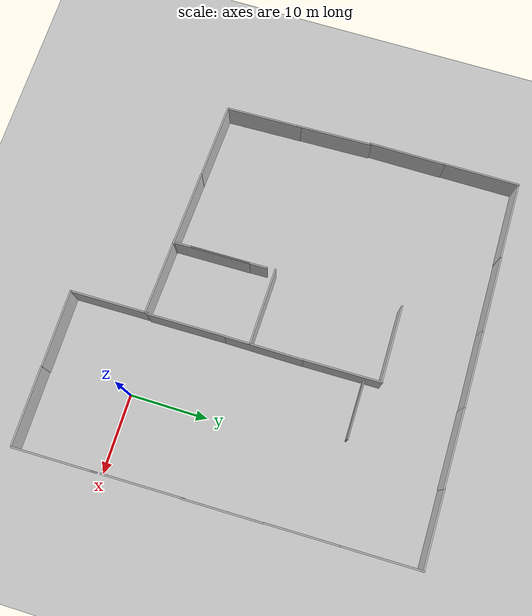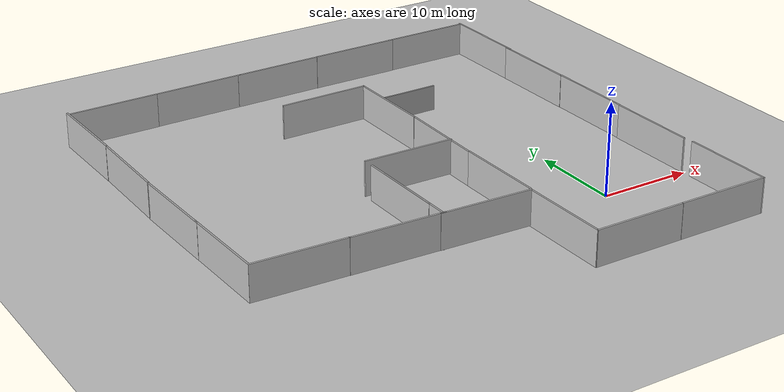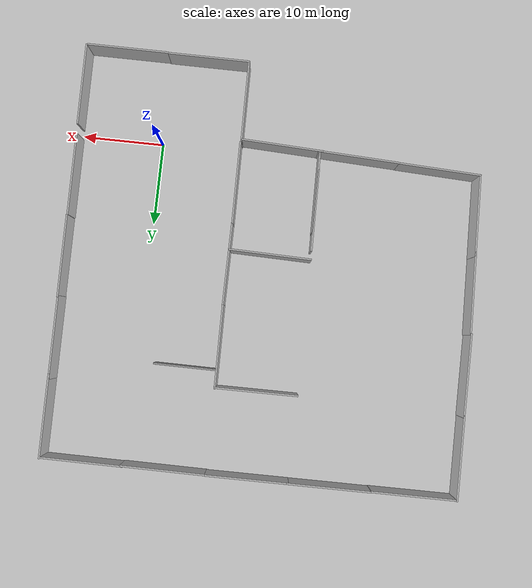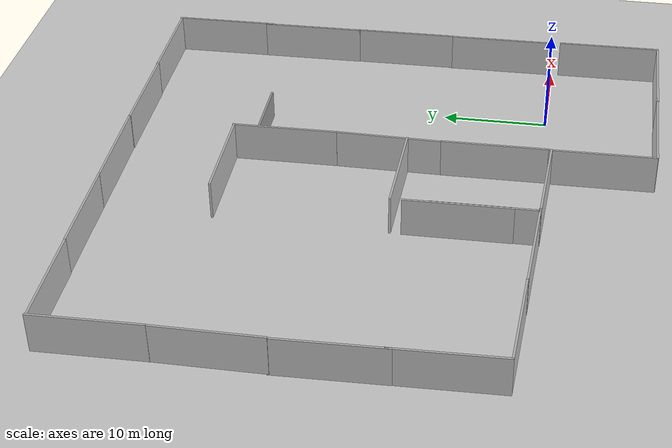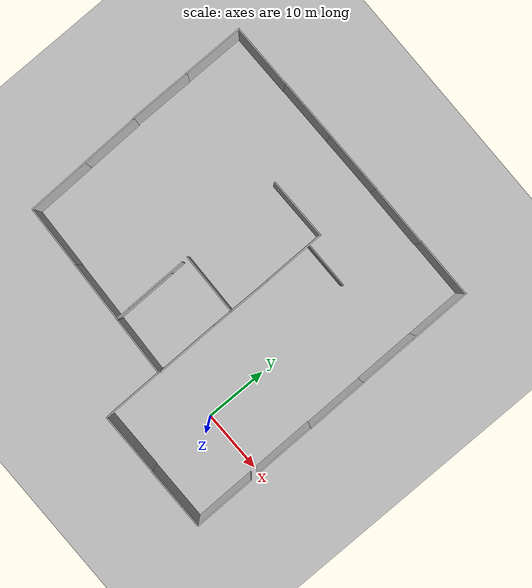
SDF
<sdf version="1.7">
 <world name="default">
  <light name="sun" type="directional">
   <pose>0 0 10 0 -0 0</pose>
   <diffuse>0.8 0.8 0.8 1</diffuse>
   <specular>0.2 0.2 0.2 1</specular>
   <attenuation>
    <range>1000</range>
    <constant>0.9</constant>
    <linear>0.01</linear>
    <quadratic>0.001</quadratic>
   </attenuation>
   <direction>-0.5 0.1 -0.9</direction>
   <spot><inner_angle>0</inner_angle><outer_angle>0</outer_angle><falloff>0</falloff></spot>
  </light>
  <model name="ground_plane">
   <static>1</static>
   <link name="link">
    <collision name="collision">
     <geometry><plane><normal>0 0 1</normal><size>100 100</size></plane></geometry>
     <surface>
      <contact><collide_bitmask>65535</collide_bitmask></contact>
      <friction><ode><mu>100</mu><mu2>50</mu2></ode></friction>
     </surface>
    </collision>
    <visual name="visual">
     <cast_shadows>0</cast_shadows>
     <geometry><plane><normal>0 0 1</normal><size>100 100</size></plane></geometry>
     <material>
      <script><uri>file://media/materials/scripts/gazebo.material</uri><name>Gazebo/Grey</name></script>
     </material>
    </visual>
   </link>
  </model>
  <gravity>0 0 -9.8</gravity>
  <magnetic_field>6e-06 2.3e-05 -4.2e-05</magnetic_field>
  <atmosphere type="adiabatic"/>
  <physics type="ode">
   <max_step_size>0.001</max_step_size>
   <real_time_factor>1</real_time_factor>
   <real_time_update_rate>1000</real_time_update_rate>
  </physics>
  <scene><ambient>0.4 0.4 0.4 1</ambient><background>0.7 0.7 0.7 1</background><shadows>1</shadows></scene>
  <audio><device>default</device></audio>
  <spherical_coordinates>
   <surface_model>EARTH_WGS84</surface_model>
   <latitude_deg>0</latitude_deg>
   <longitude_deg>0</longitude_deg>
   <elevation>0</elevation>
   <heading_deg>0</heading_deg>
  </spherical_coordinates>
  <model name="cutout_wall">
   <static>1</static>
   <link name="link">
    <pose>0 0 1.4 0 -0 0</pose>
    <collision name="collision">
     <geometry><box><size>10 0.2 3.8</size></box></geometry>
     <surface>
      <contact>
       <collide_without_contact>1</collide_without_contact>
       <collide_without_contact_bitmask>2</collide_without_contact_bitmask>
      </contact>
     </surface>
    </collision>
    <visual name="visual">
     <cast_shadows>0</cast_shadows>
     <geometry><box><size>10 0.2 3.8</size></box></geometry>
     <material>
      <script>
       <uri>/home/yy/factory_ws/src/models/cutout_wall/materials/scripts</uri>
       <uri>/home/yy/factory_ws/src/models/cutout_wall/materials/textures</uri>
       <name>drc_practice/cutout_wall</name>
      </script>
     </material>
    </visual>
    <sensor name="mud_contact" type="contact">
     <always_on>1</always_on>
     <update_rate>1000</update_rate>
     <contact><collision>collision</collision><topic>__default_topic__</topic></contact>
    </sensor>
   </link>
   <plugin name="gazebo_mud" filename="libMudPlugin.so">
    <contact_sensor_name>link/mud_contact</contact_sensor_name>
    <stiffness>0.0</stiffness>
    <damping>40.0</damping>
    <contact_surface_bitmask>2</contact_surface_bitmask>
    <link_name>drill::link</link_name>
   </plugin>
   <pose>5.14559 -10.6858 0.4676 0 -0 0</pose>
  </model>
  <model name="cutout_wall_0">
   <static>1</static>
   <link name="link">
    <pose>0 0 1.4 0 -0 0</pose>
    <collision name="collision">
     <geometry><box><size>10 0.2 3.8</size></box></geometry>
     <surface>
      <contact>
       <collide_without_contact>1</collide_without_contact>
       <collide_without_contact_bitmask>2</collide_without_contact_bitmask>
      </contact>
     </surface>
    </collision>
    <visual name="visual">
     <cast_shadows>0</cast_shadows>
     <geometry><box><size>10 0.2 3.8</size></box></geometry>
     <material>
      <script>
       <uri>/home/yy/factory_ws/src/models/cutout_wall/materials/scripts</uri>
       <uri>/home/yy/factory_ws/src/models/cutout_wall/materials/textures</uri>
       <name>drc_practice/cutout_wall</name>
      </script>
     </material>
    </visual>
    <sensor name="mud_contact" type="contact">
     <always_on>1</always_on>
     <update_rate>1000</update_rate>
     <contact><collision>collision</collision><topic>__default_topic__</topic></contact>
    </sensor>
   </link>
   <plugin name="gazebo_mud" filename="libMudPlugin.so">
    <contact_sensor_name>link/mud_contact</contact_sensor_name>
    <stiffness>0.0</stiffness>
    <damping>40.0</damping>
    <contact_surface_bitmask>2</contact_surface_bitmask>
    <link_name>drill::link</link_name>
   </plugin>
   <pose>-4.79404 -10.6418 0.43645 0 -0 0</pose>
  </model>
  <model name="cutout_wall_1">
   <static>1</static>
   <link name="link">
    <pose>0 0 1.4 0 -0 0</pose>
    <collision name="collision">
     <geometry><box><size>10 0.2 3.8</size></box></geometry>
     <surface>
      <contact>
       <collide_without_contact>1</collide_without_contact>
       <collide_without_contact_bitmask>2</collide_without_contact_bitmask>
      </contact>
     </surface>
    </collision>
    <visual name="visual">
     <cast_shadows>0</cast_shadows>
     <geometry><box><size>10 0.2 3.8</size></box></geometry>
     <material>
      <script>
       <uri>/home/yy/factory_ws/src/models/cutout_wall/materials/scripts</uri>
       <uri>/home/yy/factory_ws/src/models/cutout_wall/materials/textures</uri>
       <name>drc_practice/cutout_wall</name>
      </script>
     </material>
    </visual>
    <sensor name="mud_contact" type="contact">
     <always_on>1</always_on>
     <update_rate>1000</update_rate>
     <contact><collision>collision</collision><topic>__default_topic__</topic></contact>
    </sensor>
   </link>
   <plugin name="gazebo_mud" filename="libMudPlugin.so">
    <contact_sensor_name>link/mud_contact</contact_sensor_name>
    <stiffness>0.0</stiffness>
    <damping>40.0</damping>
    <contact_surface_bitmask>2</contact_surface_bitmask>
    <link_name>drill::link</link_name>
   </plugin>
   <pose>-9.82559 4.32011 0.41716 0 0 -1.56067</pose>
  </model>
  <model name="cutout_wall_1_clone">
   <static>1</static>
   <link name="link">
    <pose>0 0 1.4 0 -0 0</pose>
    <collision name="collision">
     <geometry><box><size>10 0.2 3.8</size></box></geometry>
     <surface>
      <contact>
       <collide_without_contact>1</collide_without_contact>
       <collide_without_contact_bitmask>2</collide_without_contact_bitmask>
      </contact>
     </surface>
    </collision>
    <visual name="visual">
     <cast_shadows>0</cast_shadows>
     <geometry><box><size>10 0.2 3.8</size></box></geometry>
     <material>
      <script>
       <uri>/home/yy/factory_ws/src/models/cutout_wall/materials/scripts</uri>
       <uri>/home/yy/factory_ws/src/models/cutout_wall/materials/textures</uri>
       <name>drc_practice/cutout_wall</name>
      </script>
     </material>
    </visual>
    <sensor name="mud_contact" type="contact">
     <always_on>1</always_on>
     <update_rate>1000</update_rate>
     <contact><collision>collision</collision><topic>__default_topic__</topic></contact>
    </sensor>
   </link>
   <plugin name="gazebo_mud" filename="libMudPlugin.so">
    <contact_sensor_name>link/mud_contact</contact_sensor_name>
    <stiffness>0.0</stiffness>
    <damping>40.0</damping>
    <contact_surface_bitmask>2</contact_surface_bitmask>
    <link_name>drill::link</link_name>
   </plugin>
   <pose>-9.81295 -5.68313 0.43259 0 0 -1.55905</pose>
  </model>
  <model name="cutout_wall_1_clone_0">
   <static>1</static>
   <link name="link">
    <pose>0 0 1.4 0 -0 0</pose>
    <collision name="collision">
     <geometry><box><size>10 0.2 3.8</size></box></geometry>
     <surface>
      <contact>
       <collide_without_contact>1</collide_without_contact>
       <collide_without_contact_bitmask>2</collide_without_contact_bitmask>
      </contact>
     </surface>
    </collision>
    <visual name="visual">
     <cast_shadows>0</cast_shadows>
     <geometry><box><size>10 0.2 3.8</size></box></geometry>
     <material>
      <script>
       <uri>/home/yy/factory_ws/src/models/cutout_wall/materials/scripts</uri>
       <uri>/home/yy/factory_ws/src/models/cutout_wall/materials/textures</uri>
       <name>drc_practice/cutout_wall</name>
      </script>
     </material>
    </visual>
    <sensor name="mud_contact" type="contact">
     <always_on>1</always_on>
     <update_rate>1000</update_rate>
     <contact><collision>collision</collision><topic>__default_topic__</topic></contact>
    </sensor>
   </link>
   <plugin name="gazebo_mud" filename="libMudPlugin.so">
    <contact_sensor_name>link/mud_contact</contact_sensor_name>
    <stiffness>0.0</stiffness>
    <damping>40.0</damping>
    <contact_surface_bitmask>2</contact_surface_bitmask>
    <link_name>drill::link</link_name>
   </plugin>
   <pose>-9.84536 14.3074 0.400004 0 0.007889 -1.57425</pose>
  </model>
  <model name="cutout_wall_1_clone_clone">
   <static>1</static>
   <link name="link">
    <pose>0 0 1.4 0 -0 0</pose>
    <collision name="collision">
     <geometry><box><size>10 0.2 3.8</size></box></geometry>
     <surface>
      <contact>
       <collide_without_contact>1</collide_without_contact>
       <collide_without_contact_bitmask>2</collide_without_contact_bitmask>
      </contact>
     </surface>
    </collision>
    <visual name="visual">
     <cast_shadows>0</cast_shadows>
     <geometry><box><size>10 0.2 3.8</size></box></geometry>
     <material>
      <script>
       <uri>/home/yy/factory_ws/src/models/cutout_wall/materials/scripts</uri>
       <uri>/home/yy/factory_ws/src/models/cutout_wall/materials/textures</uri>
       <name>drc_practice/cutout_wall</name>
      </script>
     </material>
    </visual>
    <sensor name="mud_contact" type="contact">
     <always_on>1</always_on>
     <update_rate>1000</update_rate>
     <contact><collision>collision</collision><topic>__default_topic__</topic></contact>
    </sensor>
   </link>
   <plugin name="gazebo_mud" filename="libMudPlugin.so">
    <contact_sensor_name>link/mud_contact</contact_sensor_name>
    <stiffness>0.0</stiffness>
    <damping>40.0</damping>
    <contact_surface_bitmask>2</contact_surface_bitmask>
    <link_name>drill::link</link_name>
   </plugin>
   <pose>-9.90847 24.1982 0.45219 0 0 -1.55905</pose>
  </model>
  <model name="cutout_wall_0_clone">
   <static>1</static>
   <link name="link">
    <pose>0 0 1.4 0 -0 0</pose>
    <collision name="collision">
     <geometry><box><size>10 0.2 3.8</size></box></geometry>
     <surface>
      <contact>
       <collide_without_contact>1</collide_without_contact>
       <collide_without_contact_bitmask>2</collide_without_contact_bitmask>
      </contact>
     </surface>
    </collision>
    <visual name="visual">
     <cast_shadows>0</cast_shadows>
     <geometry><box><size>10 0.2 3.8</size></box></geometry>
     <material>
      <script>
       <uri>/home/yy/factory_ws/src/models/cutout_wall/materials/scripts</uri>
       <uri>/home/yy/factory_ws/src/models/cutout_wall/materials/textures</uri>
       <name>drc_practice/cutout_wall</name>
      </script>
     </material>
    </visual>
    <sensor name="mud_contact" type="contact">
     <always_on>1</always_on>
     <update_rate>1000</update_rate>
     <contact><collision>collision</collision><topic>__default_topic__</topic></contact>
    </sensor>
   </link>
   <plugin name="gazebo_mud" filename="libMudPlugin.so">
    <contact_sensor_name>link/mud_contact</contact_sensor_name>
    <stiffness>0.0</stiffness>
    <damping>40.0</damping>
    <contact_surface_bitmask>2</contact_surface_bitmask>
    <link_name>drill::link</link_name>
   </plugin>
   <pose>-4.89379 39.2865 0.38508 0 -0 0</pose>
  </model>
  <model name="cutout_wall_0_clone_0">
   <static>1</static>
   <link name="link">
    <pose>0 0 1.4 0 -0 0</pose>
    <collision name="collision">
     <geometry><box><size>10 0.2 3.8</size></box></geometry>
     <surface>
      <contact>
       <collide_without_contact>1</collide_without_contact>
       <collide_without_contact_bitmask>2</collide_without_contact_bitmask>
      </contact>
     </surface>
    </collision>
    <visual name="visual">
     <cast_shadows>0</cast_shadows>
     <geometry><box><size>10 0.2 3.8</size></box></geometry>
     <material>
      <script>
       <uri>/home/yy/factory_ws/src/models/cutout_wall/materials/scripts</uri>
       <uri>/home/yy/factory_ws/src/models/cutout_wall/materials/textures</uri>
       <name>drc_practice/cutout_wall</name>
      </script>
     </material>
    </visual>
    <sensor name="mud_contact" type="contact">
     <always_on>1</always_on>
     <update_rate>1000</update_rate>
     <contact><collision>collision</collision><topic>__default_topic__</topic></contact>
    </sensor>
   </link>
   <plugin name="gazebo_mud" filename="libMudPlugin.so">
    <contact_sensor_name>link/mud_contact</contact_sensor_name>
    <stiffness>0.0</stiffness>
    <damping>40.0</damping>
    <contact_surface_bitmask>2</contact_surface_bitmask>
    <link_name>drill::link</link_name>
   </plugin>
   <pose>4.75365 39.3383 0.37091 0 -0 0</pose>
  </model>
  <model name="cutout_wall_1_clone_clone_clone">
   <static>1</static>
   <link name="link">
    <pose>0 0 1.4 0 -0 0</pose>
    <collision name="collision">
     <geometry><box><size>10 0.2 3.8</size></box></geometry>
     <surface>
      <contact>
       <collide_without_contact>1</collide_without_contact>
       <collide_without_contact_bitmask>2</collide_without_contact_bitmask>
      </contact>
     </surface>
    </collision>
    <visual name="visual">
     <cast_shadows>0</cast_shadows>
     <geometry><box><size>10 0.2 3.8</size></box></geometry>
     <material>
      <script>
       <uri>/home/yy/factory_ws/src/models/cutout_wall/materials/scripts</uri>
       <uri>/home/yy/factory_ws/src/models/cutout_wall/materials/textures</uri>
       <name>drc_practice/cutout_wall</name>
      </script>
     </material>
    </visual>
    <sensor name="mud_contact" type="contact">
     <always_on>1</always_on>
     <update_rate>1000</update_rate>
     <contact><collision>collision</collision><topic>__default_topic__</topic></contact>
    </sensor>
   </link>
   <plugin name="gazebo_mud" filename="libMudPlugin.so">
    <contact_sensor_name>link/mud_contact</contact_sensor_name>
    <stiffness>0.0</stiffness>
    <damping>40.0</damping>
    <contact_surface_bitmask>2</contact_surface_bitmask>
    <link_name>drill::link</link_name>
   </plugin>
   <pose>10.1898 -5.73081 0.43821 0 0 -1.55905</pose>
  </model>
  <model name="cutout_wall_1_clone_clone_clone_clone">
   <static>1</static>
   <link name="link">
    <pose>0 0 1.4 0 -0 0</pose>
    <collision name="collision">
     <geometry><box><size>10 0.2 3.8</size></box></geometry>
     <surface>
      <contact>
       <collide_without_contact>1</collide_without_contact>
       <collide_without_contact_bitmask>2</collide_without_contact_bitmask>
      </contact>
     </surface>
    </collision>
    <visual name="visual">
     <cast_shadows>0</cast_shadows>
     <geometry><box><size>10 0.2 3.8</size></box></geometry>
     <material>
      <script>
       <uri>/home/yy/factory_ws/src/models/cutout_wall/materials/scripts</uri>
       <uri>/home/yy/factory_ws/src/models/cutout_wall/materials/textures</uri>
       <name>drc_practice/cutout_wall</name>
      </script>
     </material>
    </visual>
    <sensor name="mud_contact" type="contact">
     <always_on>1</always_on>
     <update_rate>1000</update_rate>
     <contact><collision>collision</collision><topic>__default_topic__</topic></contact>
    </sensor>
   </link>
   <plugin name="gazebo_mud" filename="libMudPlugin.so">
    <contact_sensor_name>link/mud_contact</contact_sensor_name>
    <stiffness>0.0</stiffness>
    <damping>40.0</damping>
    <contact_surface_bitmask>2</contact_surface_bitmask>
    <link_name>drill::link</link_name>
   </plugin>
   <pose>10.0209 5.407 0.37058 0 0 -1.55905</pose>
  </model>
  <model name="cutout_wall_1_clone_clone_clone_clone_0">
   <static>1</static>
   <link name="link">
    <pose>0 0 1.4 0 -0 0</pose>
    <collision name="collision">
     <geometry><box><size>10 0.2 3.8</size></box></geometry>
     <surface>
      <contact>
       <collide_without_contact>1</collide_without_contact>
       <collide_without_contact_bitmask>2</collide_without_contact_bitmask>
      </contact>
     </surface>
    </collision>
    <visual name="visual">
     <cast_shadows>0</cast_shadows>
     <geometry><box><size>10 0.2 3.8</size></box></geometry>
     <material>
      <script>
       <uri>/home/yy/factory_ws/src/models/cutout_wall/materials/scripts</uri>
       <uri>/home/yy/factory_ws/src/models/cutout_wall/materials/textures</uri>
       <name>drc_practice/cutout_wall</name>
      </script>
     </material>
    </visual>
    <sensor name="mud_contact" type="contact">
     <always_on>1</always_on>
     <update_rate>1000</update_rate>
     <contact><collision>collision</collision><topic>__default_topic__</topic></contact>
    </sensor>
   </link>
   <plugin name="gazebo_mud" filename="libMudPlugin.so">
    <contact_sensor_name>link/mud_contact</contact_sensor_name>
    <stiffness>0.0</stiffness>
    <damping>40.0</damping>
    <contact_surface_bitmask>2</contact_surface_bitmask>
    <link_name>drill::link</link_name>
   </plugin>
   <pose>9.96213 15.3804 0.36689 0 0 -1.55905</pose>
  </model>
  <model name="cutout_wall_1_clone_clone_clone_clone_0_clone">
   <static>1</static>
   <link name="link">
    <pose>0 0 1.4 0 -0 0</pose>
    <collision name="collision">
     <geometry><box><size>10 0.2 3.8</size></box></geometry>
     <surface>
      <contact>
       <collide_without_contact>1</collide_without_contact>
       <collide_without_contact_bitmask>2</collide_without_contact_bitmask>
      </contact>
     </surface>
    </collision>
    <visual name="visual">
     <cast_shadows>0</cast_shadows>
     <geometry><box><size>10 0.2 3.8</size></box></geometry>
     <material>
      <script>
       <uri>/home/yy/factory_ws/src/models/cutout_wall/materials/scripts</uri>
       <uri>/home/yy/factory_ws/src/models/cutout_wall/materials/textures</uri>
       <name>drc_practice/cutout_wall</name>
      </script>
     </material>
    </visual>
    <sensor name="mud_contact" type="contact">
     <always_on>1</always_on>
     <update_rate>1000</update_rate>
     <contact><collision>collision</collision><topic>__default_topic__</topic></contact>
    </sensor>
   </link>
   <plugin name="gazebo_mud" filename="libMudPlugin.so">
    <contact_sensor_name>link/mud_contact</contact_sensor_name>
    <stiffness>0.0</stiffness>
    <damping>40.0</damping>
    <contact_surface_bitmask>2</contact_surface_bitmask>
    <link_name>drill::link</link_name>
   </plugin>
   <pose>9.80254 25.1921 0.35951 0 0 -1.55905</pose>
  </model>
  <model name="cutout_wall_1_clone_clone_clone_clone_0_clone_0">
   <static>1</static>
   <link name="link">
    <pose>0 0 1.4 0 -0 0</pose>
    <collision name="collision">
     <geometry><box><size>10 0.2 3.8</size></box></geometry>
     <surface>
      <contact>
       <collide_without_contact>1</collide_without_contact>
       <collide_without_contact_bitmask>2</collide_without_contact_bitmask>
      </contact>
     </surface>
    </collision>
    <visual name="visual">
     <cast_shadows>0</cast_shadows>
     <geometry><box><size>10 0.2 3.8</size></box></geometry>
     <material>
      <script>
       <uri>/home/yy/factory_ws/src/models/cutout_wall/materials/scripts</uri>
       <uri>/home/yy/factory_ws/src/models/cutout_wall/materials/textures</uri>
       <name>drc_practice/cutout_wall</name>
      </script>
     </material>
    </visual>
    <sensor name="mud_contact" type="contact">
     <always_on>1</always_on>
     <update_rate>1000</update_rate>
     <contact><collision>collision</collision><topic>__default_topic__</topic></contact>
    </sensor>
   </link>
   <plugin name="gazebo_mud" filename="libMudPlugin.so">
    <contact_sensor_name>link/mud_contact</contact_sensor_name>
    <stiffness>0.0</stiffness>
    <damping>40.0</damping>
    <contact_surface_bitmask>2</contact_surface_bitmask>
    <link_name>drill::link</link_name>
   </plugin>
   <pose>9.69794 34.4957 0.4085 0 0 -1.55905</pose>
  </model>
  <model name="grey_wall">
   <static>1</static>
   <link name="link">
    <pose>0 0 1.4 0 -0 0</pose>
    <collision name="collision"><geometry><box><size>7.5 0.2 2.8</size></box></geometry></collision>
    <visual name="visual">
     <cast_shadows>0</cast_shadows>
     <geometry><box><size>7.5 0.2 2.8</size></box></geometry>
     <material>
      <script>
       <uri>/home/yy/factory_ws/src/models/grey_wall/materials/scripts</uri>
       <uri>/home/yy/factory_ws/src/models/grey_wall/materials/textures</uri>
       <name>vrc/grey_wall</name>
      </script>
     </material>
    </visual>
   </link>
   <pose>-6.049 27.0237 0 0 -0 0</pose>
  </model>
  <model name="cutout_wall_1_clone_clone_clone_0">
   <static>1</static>
   <link name="link">
    <pose>0 0 1.4 0 -0 0</pose>
    <collision name="collision">
     <geometry><box><size>10 0.2 3.8</size></box></geometry>
     <surface>
      <contact>
       <collide_without_contact>1</collide_without_contact>
       <collide_without_contact_bitmask>2</collide_without_contact_bitmask>
      </contact>
     </surface>
    </collision>
    <visual name="visual">
     <cast_shadows>0</cast_shadows>
     <geometry><box><size>10 0.2 3.8</size></box></geometry>
     <material>
      <script>
       <uri>/home/yy/factory_ws/src/models/cutout_wall/materials/scripts</uri>
       <uri>/home/yy/factory_ws/src/models/cutout_wall/materials/textures</uri>
       <name>drc_practice/cutout_wall</name>
      </script>
     </material>
    </visual>
    <sensor name="mud_contact" type="contact">
     <always_on>1</always_on>
     <update_rate>1000</update_rate>
     <contact><collision>collision</collision><topic>__default_topic__</topic></contact>
    </sensor>
   </link>
   <plugin name="gazebo_mud" filename="libMudPlugin.so">
    <contact_sensor_name>link/mud_contact</contact_sensor_name>
    <stiffness>0.0</stiffness>
    <damping>40.0</damping>
    <contact_surface_bitmask>2</contact_surface_bitmask>
    <link_name>drill::link</link_name>
   </plugin>
   <pose>-14.8769 29.0058 0.46373 0 -0 0.008411</pose>
  </model>
  <model name="cutout_wall_1_clone_clone_clone_0_clone">
   <static>1</static>
   <link name="link">
    <pose>0 0 1.4 0 -0 0</pose>
    <collision name="collision">
     <geometry><box><size>10 0.2 3.8</size></box></geometry>
     <surface>
      <contact>
       <collide_without_contact>1</collide_without_contact>
       <collide_without_contact_bitmask>2</collide_without_contact_bitmask>
      </contact>
     </surface>
    </collision>
    <visual name="visual">
     <cast_shadows>0</cast_shadows>
     <geometry><box><size>10 0.2 3.8</size></box></geometry>
     <material>
      <script>
       <uri>/home/yy/factory_ws/src/models/cutout_wall/materials/scripts</uri>
       <uri>/home/yy/factory_ws/src/models/cutout_wall/materials/textures</uri>
       <name>drc_practice/cutout_wall</name>
      </script>
     </material>
    </visual>
    <sensor name="mud_contact" type="contact">
     <always_on>1</always_on>
     <update_rate>1000</update_rate>
     <contact><collision>collision</collision><topic>__default_topic__</topic></contact>
    </sensor>
   </link>
   <plugin name="gazebo_mud" filename="libMudPlugin.so">
    <contact_sensor_name>link/mud_contact</contact_sensor_name>
    <stiffness>0.0</stiffness>
    <damping>40.0</damping>
    <contact_surface_bitmask>2</contact_surface_bitmask>
    <link_name>drill::link</link_name>
   </plugin>
   <pose>-14.8259 39.2793 0.35838 0 -0 0.008411</pose>
  </model>
  <model name="cutout_wall_1_clone_clone_clone_0_clone_0">
   <static>1</static>
   <link name="link">
    <pose>0 0 1.4 0 -0 0</pose>
    <collision name="collision">
     <geometry><box><size>10 0.2 3.8</size></box></geometry>
     <surface>
      <contact>
       <collide_without_contact>1</collide_without_contact>
       <collide_without_contact_bitmask>2</collide_without_contact_bitmask>
      </contact>
     </surface>
    </collision>
    <visual name="visual">
     <cast_shadows>0</cast_shadows>
     <geometry><box><size>10 0.2 3.8</size></box></geometry>
     <material>
      <script>
       <uri>/home/yy/factory_ws/src/models/cutout_wall/materials/scripts</uri>
       <uri>/home/yy/factory_ws/src/models/cutout_wall/materials/textures</uri>
       <name>drc_practice/cutout_wall</name>
      </script>
     </material>
    </visual>
    <sensor name="mud_contact" type="contact">
     <always_on>1</always_on>
     <update_rate>1000</update_rate>
     <contact><collision>collision</collision><topic>__default_topic__</topic></contact>
    </sensor>
   </link>
   <plugin name="gazebo_mud" filename="libMudPlugin.so">
    <contact_sensor_name>link/mud_contact</contact_sensor_name>
    <stiffness>0.0</stiffness>
    <damping>40.0</damping>
    <contact_surface_bitmask>2</contact_surface_bitmask>
    <link_name>drill::link</link_name>
   </plugin>
   <pose>-24.561 39.2042 0.3601 0 -0 0.008411</pose>
  </model>
  <model name="cutout_wall_1_clone_clone_clone_0_clone_2">
   <static>1</static>
   <link name="link">
    <pose>0 0 1.4 0 -0 0</pose>
    <collision name="collision">
     <geometry><box><size>10 0.2 3.8</size></box></geometry>
     <surface>
      <contact>
       <collide_without_contact>1</collide_without_contact>
       <collide_without_contact_bitmask>2</collide_without_contact_bitmask>
      </contact>
     </surface>
    </collision>
    <visual name="visual">
     <cast_shadows>0</cast_shadows>
     <geometry><box><size>10 0.2 3.8</size></box></geometry>
     <material>
      <script>
       <uri>/home/yy/factory_ws/src/models/cutout_wall/materials/scripts</uri>
       <uri>/home/yy/factory_ws/src/models/cutout_wall/materials/textures</uri>
       <name>drc_practice/cutout_wall</name>
      </script>
     </material>
    </visual>
    <sensor name="mud_contact" type="contact">
     <always_on>1</always_on>
     <update_rate>1000</update_rate>
     <contact><collision>collision</collision><topic>__default_topic__</topic></contact>
    </sensor>
   </link>
   <plugin name="gazebo_mud" filename="libMudPlugin.so">
    <contact_sensor_name>link/mud_contact</contact_sensor_name>
    <stiffness>0.0</stiffness>
    <damping>40.0</damping>
    <contact_surface_bitmask>2</contact_surface_bitmask>
    <link_name>drill::link</link_name>
   </plugin>
   <pose>-34.5327 39.0764 0.38594 0 -0 0.008411</pose>
  </model>
  <model name="cutout_wall_1_clone_clone_clone_0_clone_3">
   <static>1</static>
   <link name="link">
    <pose>0 0 1.4 0 -0 0</pose>
    <collision name="collision">
     <geometry><box><size>10 0.2 3.8</size></box></geometry>
     <surface>
      <contact>
       <collide_without_contact>1</collide_without_contact>
       <collide_without_contact_bitmask>2</collide_without_contact_bitmask>
      </contact>
     </surface>
    </collision>
    <visual name="visual">
     <cast_shadows>0</cast_shadows>
     <geometry><box><size>10 0.2 3.8</size></box></geometry>
     <material>
      <script>
       <uri>/home/yy/factory_ws/src/models/cutout_wall/materials/scripts</uri>
       <uri>/home/yy/factory_ws/src/models/cutout_wall/materials/textures</uri>
       <name>drc_practice/cutout_wall</name>
      </script>
     </material>
    </visual>
    <sensor name="mud_contact" type="contact">
     <always_on>1</always_on>
     <update_rate>1000</update_rate>
     <contact><collision>collision</collision><topic>__default_topic__</topic></contact>
    </sensor>
   </link>
   <plugin name="gazebo_mud" filename="libMudPlugin.so">
    <contact_sensor_name>link/mud_contact</contact_sensor_name>
    <stiffness>0.0</stiffness>
    <damping>40.0</damping>
    <contact_surface_bitmask>2</contact_surface_bitmask>
    <link_name>drill::link</link_name>
   </plugin>
   <pose>-39.6166 34.1044 0.602565 0.0082 0.011814 1.57575</pose>
  </model>
  <model name="cutout_wall_1_clone_clone_clone_0_clone_4">
   <static>1</static>
   <link name="link">
    <pose>0 0 1.4 0 -0 0</pose>
    <collision name="collision">
     <geometry><box><size>10 0.2 3.8</size></box></geometry>
     <surface>
      <contact>
       <collide_without_contact>1</collide_without_contact>
       <collide_without_contact_bitmask>2</collide_without_contact_bitmask>
      </contact>
     </surface>
    </collision>
    <visual name="visual">
     <cast_shadows>0</cast_shadows>
     <geometry><box><size>10 0.2 3.8</size></box></geometry>
     <material>
      <script>
       <uri>/home/yy/factory_ws/src/models/cutout_wall/materials/scripts</uri>
       <uri>/home/yy/factory_ws/src/models/cutout_wall/materials/textures</uri>
       <name>drc_practice/cutout_wall</name>
      </script>
     </material>
    </visual>
    <sensor name="mud_contact" type="contact">
     <always_on>1</always_on>
     <update_rate>1000</update_rate>
     <contact><collision>collision</collision><topic>__default_topic__</topic></contact>
    </sensor>
   </link>
   <plugin name="gazebo_mud" filename="libMudPlugin.so">
    <contact_sensor_name>link/mud_contact</contact_sensor_name>
    <stiffness>0.0</stiffness>
    <damping>40.0</damping>
    <contact_surface_bitmask>2</contact_surface_bitmask>
    <link_name>drill::link</link_name>
   </plugin>
   <pose>-39.5673 24.4181 0.6313 0 0 -1.57289</pose>
  </model>
  <model name="cutout_wall_1_clone_clone_clone_0_clone_1_clone_0">
   <static>1</static>
   <link name="link">
    <pose>0 0 1.4 0 -0 0</pose>
    <collision name="collision">
     <geometry><box><size>10 0.2 3.8</size></box></geometry>
     <surface>
      <contact>
       <collide_without_contact>1</collide_without_contact>
       <collide_without_contact_bitmask>2</collide_without_contact_bitmask>
      </contact>
     </surface>
    </collision>
    <visual name="visual">
     <cast_shadows>0</cast_shadows>
     <geometry><box><size>10 0.2 3.8</size></box></geometry>
     <material>
      <script>
       <uri>/home/yy/factory_ws/src/models/cutout_wall/materials/scripts</uri>
       <uri>/home/yy/factory_ws/src/models/cutout_wall/materials/textures</uri>
       <name>drc_practice/cutout_wall</name>
      </script>
     </material>
    </visual>
    <sensor name="mud_contact" type="contact">
     <always_on>1</always_on>
     <update_rate>1000</update_rate>
     <contact><collision>collision</collision><topic>__default_topic__</topic></contact>
    </sensor>
   </link>
   <plugin name="gazebo_mud" filename="libMudPlugin.so">
    <contact_sensor_name>link/mud_contact</contact_sensor_name>
    <stiffness>0.0</stiffness>
    <damping>40.0</damping>
    <contact_surface_bitmask>2</contact_surface_bitmask>
    <link_name>drill::link</link_name>
   </plugin>
   <pose>-39.3901 14.6352 0.50732 0 -0 1.59587</pose>
  </model>
  <model name="cutout_wall_1_clone_clone_clone_0_clone_1_clone_1">
   <static>1</static>
   <link name="link">
    <pose>0 0 1.4 0 -0 0</pose>
    <collision name="collision">
     <geometry><box><size>10 0.2 3.8</size></box></geometry>
     <surface>
      <contact>
       <collide_without_contact>1</collide_without_contact>
       <collide_without_contact_bitmask>2</collide_without_contact_bitmask>
      </contact>
     </surface>
    </collision>
    <visual name="visual">
     <cast_shadows>0</cast_shadows>
     <geometry><box><size>10 0.2 3.8</size></box></geometry>
     <material>
      <script>
       <uri>/home/yy/factory_ws/src/models/cutout_wall/materials/scripts</uri>
       <uri>/home/yy/factory_ws/src/models/cutout_wall/materials/textures</uri>
       <name>drc_practice/cutout_wall</name>
      </script>
     </material>
    </visual>
    <sensor name="mud_contact" type="contact">
     <always_on>1</always_on>
     <update_rate>1000</update_rate>
     <contact><collision>collision</collision><topic>__default_topic__</topic></contact>
    </sensor>
   </link>
   <plugin name="gazebo_mud" filename="libMudPlugin.so">
    <contact_sensor_name>link/mud_contact</contact_sensor_name>
    <stiffness>0.0</stiffness>
    <damping>40.0</damping>
    <contact_surface_bitmask>2</contact_surface_bitmask>
    <link_name>drill::link</link_name>
   </plugin>
   <pose>-39.1395 5.26912 0.50732 0 -0 1.59587</pose>
  </model>
  <model name="cutout_wall_1_clone_clone_clone_0_clone_1_clone_2">
   <static>1</static>
   <link name="link">
    <pose>0 0 1.4 0 -0 0</pose>
    <collision name="collision">
     <geometry><box><size>10 0.2 3.8</size></box></geometry>
     <surface>
      <contact>
       <collide_without_contact>1</collide_without_contact>
       <collide_without_contact_bitmask>2</collide_without_contact_bitmask>
      </contact>
     </surface>
    </collision>
    <visual name="visual">
     <cast_shadows>0</cast_shadows>
     <geometry><box><size>10 0.2 3.8</size></box></geometry>
     <material>
      <script>
       <uri>/home/yy/factory_ws/src/models/cutout_wall/materials/scripts</uri>
       <uri>/home/yy/factory_ws/src/models/cutout_wall/materials/textures</uri>
       <name>drc_practice/cutout_wall</name>
      </script>
     </material>
    </visual>
    <sensor name="mud_contact" type="contact">
     <always_on>1</always_on>
     <update_rate>1000</update_rate>
     <contact><collision>collision</collision><topic>__default_topic__</topic></contact>
    </sensor>
   </link>
   <plugin name="gazebo_mud" filename="libMudPlugin.so">
    <contact_sensor_name>link/mud_contact</contact_sensor_name>
    <stiffness>0.0</stiffness>
    <damping>40.0</damping>
    <contact_surface_bitmask>2</contact_surface_bitmask>
    <link_name>drill::link</link_name>
   </plugin>
   <pose>-34.1102 0.15298 0.50732 0 -0 3.09857</pose>
  </model>
  <model name="cutout_wall_1_clone_clone_clone_0_clone_1_clone_2_clone">
   <static>1</static>
   <link name="link">
    <pose>0 0 1.4 0 -0 0</pose>
    <collision name="collision">
     <geometry><box><size>10 0.2 3.8</size></box></geometry>
     <surface>
      <contact>
       <collide_without_contact>1</collide_without_contact>
       <collide_without_contact_bitmask>2</collide_without_contact_bitmask>
      </contact>
     </surface>
    </collision>
    <visual name="visual">
     <cast_shadows>0</cast_shadows>
     <geometry><box><size>10 0.2 3.8</size></box></geometry>
     <material>
      <script>
       <uri>/home/yy/factory_ws/src/models/cutout_wall/materials/scripts</uri>
       <uri>/home/yy/factory_ws/src/models/cutout_wall/materials/textures</uri>
       <name>drc_practice/cutout_wall</name>
      </script>
     </material>
    </visual>
    <sensor name="mud_contact" type="contact">
     <always_on>1</always_on>
     <update_rate>1000</update_rate>
     <contact><collision>collision</collision><topic>__default_topic__</topic></contact>
    </sensor>
   </link>
   <plugin name="gazebo_mud" filename="libMudPlugin.so">
    <contact_sensor_name>link/mud_contact</contact_sensor_name>
    <stiffness>0.0</stiffness>
    <damping>40.0</damping>
    <contact_surface_bitmask>2</contact_surface_bitmask>
    <link_name>drill::link</link_name>
   </plugin>
   <pose>-24.238 -0.300276 0.50732 0 -0 3.09857</pose>
  </model>
  <model name="cutout_wall_1_clone_clone_clone_0_clone_1_clone_2_clone_0">
   <static>1</static>
   <link name="link">
    <pose>0 0 1.4 0 -0 0</pose>
    <collision name="collision">
     <geometry><box><size>10 0.2 3.8</size></box></geometry>
     <surface>
      <contact>
       <collide_without_contact>1</collide_without_contact>
       <collide_without_contact_bitmask>2</collide_without_contact_bitmask>
      </contact>
     </surface>
    </collision>
    <visual name="visual">
     <cast_shadows>0</cast_shadows>
     <geometry><box><size>10 0.2 3.8</size></box></geometry>
     <material>
      <script>
       <uri>/home/yy/factory_ws/src/models/cutout_wall/materials/scripts</uri>
       <uri>/home/yy/factory_ws/src/models/cutout_wall/materials/textures</uri>
       <name>drc_practice/cutout_wall</name>
      </script>
     </material>
    </visual>
    <sensor name="mud_contact" type="contact">
     <always_on>1</always_on>
     <update_rate>1000</update_rate>
     <contact><collision>collision</collision><topic>__default_topic__</topic></contact>
    </sensor>
   </link>
   <plugin name="gazebo_mud" filename="libMudPlugin.so">
    <contact_sensor_name>link/mud_contact</contact_sensor_name>
    <stiffness>0.0</stiffness>
    <damping>40.0</damping>
    <contact_surface_bitmask>2</contact_surface_bitmask>
    <link_name>drill::link</link_name>
   </plugin>
   <pose>-14.863 -0.735536 0.50732 0 -0 3.09857</pose>
  </model>
  <model name="cutout_wall_1_clone_clone_clone_0_clone_1_clone_2_clone_clone">
   <static>1</static>
   <link name="link">
    <pose>0 0 1.4 0 -0 0</pose>
    <collision name="collision">
     <geometry><box><size>10 0.2 3.8</size></box></geometry>
     <surface>
      <contact>
       <collide_without_contact>1</collide_without_contact>
       <collide_without_contact_bitmask>2</collide_without_contact_bitmask>
      </contact>
     </surface>
    </collision>
    <visual name="visual">
     <cast_shadows>0</cast_shadows>
     <geometry><box><size>10 0.2 3.8</size></box></geometry>
     <material>
      <script>
       <uri>/home/yy/factory_ws/src/models/cutout_wall/materials/scripts</uri>
       <uri>/home/yy/factory_ws/src/models/cutout_wall/materials/textures</uri>
       <name>drc_practice/cutout_wall</name>
      </script>
     </material>
    </visual>
    <sensor name="mud_contact" type="contact">
     <always_on>1</always_on>
     <update_rate>1000</update_rate>
     <contact><collision>collision</collision><topic>__default_topic__</topic></contact>
    </sensor>
   </link>
   <plugin name="gazebo_mud" filename="libMudPlugin.so">
    <contact_sensor_name>link/mud_contact</contact_sensor_name>
    <stiffness>0.0</stiffness>
    <damping>40.0</damping>
    <contact_surface_bitmask>2</contact_surface_bitmask>
    <link_name>drill::link</link_name>
   </plugin>
   <pose>-14.8314 12.6066 0.50732 -0.00084 1.9e-05 3.12127</pose>
  </model>
  <model name="cutout_wall_1_clone_clone_clone_1">
   <static>1</static>
   <link name="link">
    <pose>0 0 1.4 0 -0 0</pose>
    <collision name="collision">
     <geometry><box><size>10 0.2 3.8</size></box></geometry>
     <surface>
      <contact>
       <collide_without_contact>1</collide_without_contact>
       <collide_without_contact_bitmask>2</collide_without_contact_bitmask>
      </contact>
     </surface>
    </collision>
    <visual name="visual">
     <cast_shadows>0</cast_shadows>
     <geometry><box><size>10 0.2 3.8</size></box></geometry>
     <material>
      <script>
       <uri>/home/yy/factory_ws/src/models/cutout_wall/materials/scripts</uri>
       <uri>/home/yy/factory_ws/src/models/cutout_wall/materials/textures</uri>
       <name>drc_practice/cutout_wall</name>
      </script>
     </material>
    </visual>
    <sensor name="mud_contact" type="contact">
     <always_on>1</always_on>
     <update_rate>1000</update_rate>
     <contact><collision>collision</collision><topic>__default_topic__</topic></contact>
    </sensor>
   </link>
   <plugin name="gazebo_mud" filename="libMudPlugin.so">
    <contact_sensor_name>link/mud_contact</contact_sensor_name>
    <stiffness>0.0</stiffness>
    <damping>40.0</damping>
    <contact_surface_bitmask>2</contact_surface_bitmask>
    <link_name>drill::link</link_name>
   </plugin>
   <pose>-19.616 6.69094 0.45219 0 0 -1.55905</pose>
  </model>
  <model name="cutout_wall_1_clone_clone_clone_2">
   <static>1</static>
   <link name="link">
    <pose>0 0 1.4 0 -0 0</pose>
    <collision name="collision">
     <geometry><box><size>10 0.2 3.8</size></box></geometry>
     <surface>
      <contact>
       <collide_without_contact>1</collide_without_contact>
       <collide_without_contact_bitmask>2</collide_without_contact_bitmask>
      </contact>
     </surface>
    </collision>
    <visual name="visual">
     <cast_shadows>0</cast_shadows>
     <geometry><box><size>10 0.2 3.8</size></box></geometry>
     <material>
      <script>
       <uri>/home/yy/factory_ws/src/models/cutout_wall/materials/scripts</uri>
       <uri>/home/yy/factory_ws/src/models/cutout_wall/materials/textures</uri>
       <name>drc_practice/cutout_wall</name>
      </script>
     </material>
    </visual>
    <sensor name="mud_contact" type="contact">
     <always_on>1</always_on>
     <update_rate>1000</update_rate>
     <contact><collision>collision</collision><topic>__default_topic__</topic></contact>
    </sensor>
   </link>
   <plugin name="gazebo_mud" filename="libMudPlugin.so">
    <contact_sensor_name>link/mud_contact</contact_sensor_name>
    <stiffness>0.0</stiffness>
    <damping>40.0</damping>
    <contact_surface_bitmask>2</contact_surface_bitmask>
    <link_name>drill::link</link_name>
   </plugin>
   <pose>-19.5578 4.41185 0.45219 0 0 -1.55905</pose>
  </model>
 </world>
</sdf>
